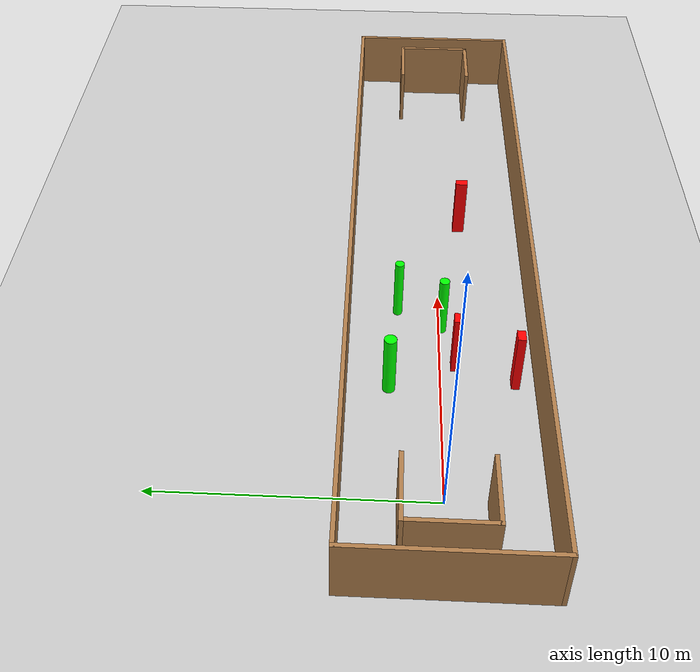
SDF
<sdf version="1.7">
 <world name="default">
  <light name="sun" type="directional">
   <pose>0 0 10 0 -0 0</pose>
   <diffuse>0.8 0.8 0.8 1</diffuse>
   <specular>0.2 0.2 0.2 1</specular>
   <attenuation>
    <range>1000</range>
    <constant>0.9</constant>
    <linear>0.01</linear>
    <quadratic>0.001</quadratic>
   </attenuation>
   <direction>-0.5 0.1 -0.9</direction>
   <spot><inner_angle>0</inner_angle><outer_angle>0</outer_angle><falloff>0</falloff></spot>
  </light>
  <model name="ground_plane">
   <static>1</static>
   <link name="link">
    <collision name="collision">
     <geometry><plane><normal>0 0 1</normal><size>100 100</size></plane></geometry>
     <surface>
      <contact><collide_bitmask>65535</collide_bitmask></contact>
      <friction><ode><mu>100</mu><mu2>50</mu2></ode></friction>
     </surface>
    </collision>
    <visual name="visual">
     <cast_shadows>0</cast_shadows>
     <geometry><plane><normal>0 0 1</normal><size>100 100</size></plane></geometry>
     <material>
      <script><uri>file://media/materials/scripts/gazebo.material</uri><name>Gazebo/Grey</name></script>
     </material>
    </visual>
   </link>
  </model>
  <gravity>0 0 -9.8</gravity>
  <magnetic_field>6e-06 2.3e-05 -4.2e-05</magnetic_field>
  <atmosphere type="adiabatic"/>
  <physics type="ode">
   <max_step_size>0.001</max_step_size>
   <real_time_factor>1</real_time_factor>
   <real_time_update_rate>1000</real_time_update_rate>
  </physics>
  <scene><ambient>0.4 0.4 0.4 1</ambient><background>0.7 0.7 0.7 1</background><shadows>1</shadows></scene>
  <spherical_coordinates>
   <surface_model>EARTH_WGS84</surface_model>
   <latitude_deg>0</latitude_deg>
   <longitude_deg>0</longitude_deg>
   <elevation>0</elevation>
   <heading_deg>0</heading_deg>
  </spherical_coordinates>
  <model name="my_base_walls">
   <link name="Wall_0">
    <collision name="Wall_0_Collision">
     <geometry><box><size>7.15 0.15 2.5</size></box></geometry>
     <pose>0 0 1.25 0 -0 0</pose>
    </collision>
    <visual name="Wall_0_Visual">
     <pose>0 0 1.25 0 -0 0</pose>
     <geometry><box><size>7.15 0.15 2.5</size></box></geometry>
     <material>
      <script><uri>file://media/materials/scripts/gazebo.material</uri><name>Gazebo/Wood</name></script>
      <ambient>1 1 1 1</ambient>
     </material>
     <meta><layer>0</layer></meta>
    </visual>
    <pose>-15 0 0 0 -0 1.5708</pose>
   </link>
   <link name="Wall_10">
    <collision name="Wall_10_Collision">
     <geometry><box><size>2.65 0.15 2.5</size></box></geometry>
     <pose>0 0 1.25 0 -0 0</pose>
    </collision>
    <visual name="Wall_10_Visual">
     <pose>0 0 1.25 0 -0 0</pose>
     <geometry><box><size>2.65 0.15 2.5</size></box></geometry>
     <material>
      <script><uri>file://media/materials/scripts/gazebo.material</uri><name>Gazebo/Wood</name></script>
      <ambient>1 1 1 1</ambient>
     </material>
     <meta><layer>0</layer></meta>
    </visual>
    <pose>-12.75 -1.5 0 0 -0 0</pose>
   </link>
   <link name="Wall_12">
    <collision name="Wall_12_Collision">
     <geometry><box><size>2.65 0.15 2.5</size></box></geometry>
     <pose>0 0 1.25 0 -0 0</pose>
    </collision>
    <visual name="Wall_12_Visual">
     <pose>0 0 1.25 0 -0 0</pose>
     <geometry><box><size>2.65 0.15 2.5</size></box></geometry>
     <material>
      <script><uri>file://media/materials/scripts/gazebo.material</uri><name>Gazebo/Wood</name></script>
      <ambient>1 1 1 1</ambient>
     </material>
     <meta><layer>0</layer></meta>
    </visual>
    <pose>-12.75 1.5 0 0 -0 0</pose>
   </link>
   <link name="Wall_14">
    <collision name="Wall_14_Collision">
     <geometry><box><size>3.15 0.15 2.5</size></box></geometry>
     <pose>0 0 1.25 0 -0 0</pose>
    </collision>
    <visual name="Wall_14_Visual">
     <pose>0 0 1.25 0 -0 0</pose>
     <geometry><box><size>3.15 0.15 2.5</size></box></geometry>
     <material>
      <script><uri>file://media/materials/scripts/gazebo.material</uri><name>Gazebo/Wood</name></script>
      <ambient>1 1 1 1</ambient>
     </material>
     <meta><layer>0</layer></meta>
    </visual>
    <pose>14 0 0 0 -0 -1.5708</pose>
   </link>
   <link name="Wall_15">
    <collision name="Wall_15_Collision">
     <geometry><box><size>2.65 0.15 2.5</size></box></geometry>
     <pose>0 0 1.25 0 -0 0</pose>
    </collision>
    <visual name="Wall_15_Visual">
     <pose>0 0 1.25 0 -0 0</pose>
     <geometry><box><size>2.65 0.15 2.5</size></box></geometry>
     <material>
      <script><uri>file://media/materials/scripts/gazebo.material</uri><name>Gazebo/Wood</name></script>
      <ambient>1 1 1 1</ambient>
     </material>
     <meta><layer>0</layer></meta>
    </visual>
    <pose>12.75 -1.5 0 0 -0 3.14159</pose>
   </link>
   <link name="Wall_17">
    <collision name="Wall_17_Collision">
     <geometry><box><size>2.65 0.15 2.5</size></box></geometry>
     <pose>0 0 1.25 0 -0 0</pose>
    </collision>
    <visual name="Wall_17_Visual">
     <pose>0 0 1.25 0 -0 0</pose>
     <geometry><box><size>2.65 0.15 2.5</size></box></geometry>
     <material>
      <script><uri>file://media/materials/scripts/gazebo.material</uri><name>Gazebo/Wood</name></script>
      <ambient>1 1 1 1</ambient>
     </material>
     <meta><layer>0</layer></meta>
    </visual>
    <pose>12.75 1.5 0 0 -0 3.14159</pose>
   </link>
   <link name="Wall_2">
    <collision name="Wall_2_Collision">
     <geometry><box><size>30.15 0.15 2.5</size></box></geometry>
     <pose>0 0 1.25 0 -0 0</pose>
    </collision>
    <visual name="Wall_2_Visual">
     <pose>0 0 1.25 0 -0 0</pose>
     <geometry><box><size>30.15 0.15 2.5</size></box></geometry>
     <material>
      <script><uri>file://media/materials/scripts/gazebo.material</uri><name>Gazebo/Wood</name></script>
      <ambient>1 1 1 1</ambient>
     </material>
     <meta><layer>0</layer></meta>
    </visual>
    <pose>-0 -3.5 0 0 -0 0</pose>
   </link>
   <link name="Wall_4">
    <collision name="Wall_4_Collision">
     <geometry><box><size>30.15 0.15 2.5</size></box></geometry>
     <pose>0 0 1.25 0 -0 0</pose>
    </collision>
    <visual name="Wall_4_Visual">
     <pose>0 0 1.25 0 -0 0</pose>
     <geometry><box><size>30.15 0.15 2.5</size></box></geometry>
     <material>
      <script><uri>file://media/materials/scripts/gazebo.material</uri><name>Gazebo/Wood</name></script>
      <ambient>1 1 1 1</ambient>
     </material>
     <meta><layer>0</layer></meta>
    </visual>
    <pose>-0 3.5 0 0 -0 0</pose>
   </link>
   <link name="Wall_6">
    <collision name="Wall_6_Collision">
     <geometry><box><size>7.15 0.15 2.5</size></box></geometry>
     <pose>0 0 1.25 0 -0 0</pose>
    </collision>
    <visual name="Wall_6_Visual">
     <pose>0 0 1.25 0 -0 0</pose>
     <geometry><box><size>7.15 0.15 2.5</size></box></geometry>
     <material>
      <script><uri>file://media/materials/scripts/gazebo.material</uri><name>Gazebo/Wood</name></script>
      <ambient>1 1 1 1</ambient>
     </material>
     <meta><layer>0</layer></meta>
    </visual>
    <pose>15 0 0 0 -0 -1.5708</pose>
   </link>
   <link name="Wall_9">
    <collision name="Wall_9_Collision">
     <geometry><box><size>3.15 0.15 2.5</size></box></geometry>
     <pose>0 0 1.25 0 -0 0</pose>
    </collision>
    <visual name="Wall_9_Visual">
     <pose>0 0 1.25 0 -0 0</pose>
     <geometry><box><size>3.15 0.15 2.5</size></box></geometry>
     <material>
      <script><uri>file://media/materials/scripts/gazebo.material</uri><name>Gazebo/Wood</name></script>
      <ambient>1 1 1 1</ambient>
     </material>
     <meta><layer>0</layer></meta>
    </visual>
    <pose>-14 0 0 0 -0 -1.5708</pose>
   </link>
   <static>1</static>
   <pose>11.5 0 0 0 -0 0</pose>
  </model>
  <model name="cylinder1">
   <static>1</static>
   <link name="link">
    <inertial>
     <mass>1</mass>
     <inertia><ixx>0.5</ixx><ixy>0</ixy><ixz>0</ixz><iyy>0.5</iyy><iyz>0</iyz><izz>1</izz></inertia>
    </inertial>
    <collision name="collision">
     <geometry><cylinder><radius>0.23187480812393502</radius><length>2.5</length></cylinder></geometry>
    </collision>
    <visual name="visual">
     <geometry><cylinder><radius>0.23187480812393502</radius><length>2.5</length></cylinder></geometry>
     <material>
      <ambient>0 1 0 1</ambient>
      <diffuse>0 1 0 1</diffuse>
      <specular>0.1 0.1 0.1 1</specular>
      <emissive>0 0 0 0</emissive>
     </material>
    </visual>
   </link>
   <pose>5.02033848131139 1.8867005184551289 1.25 0 0 0</pose>
  </model>
  <model name="cylinder2">
   <static>1</static>
   <link name="link">
    <inertial>
     <mass>1</mass>
     <inertia><ixx>0.5</ixx><ixy>0</ixy><ixz>0</ixz><iyy>0.5</iyy><iyz>0</iyz><izz>1</izz></inertia>
    </inertial>
    <collision name="collision">
     <geometry><cylinder><radius>0.17221856043110523</radius><length>2.5</length></cylinder></geometry>
    </collision>
    <visual name="visual">
     <geometry><cylinder><radius>0.17221856043110523</radius><length>2.5</length></cylinder></geometry>
     <material>
      <ambient>0 1 0 1</ambient>
      <diffuse>0 1 0 1</diffuse>
      <specular>0.1 0.1 0.1 1</specular>
      <emissive>0 0 0 0</emissive>
     </material>
    </visual>
   </link>
   <pose>9.09345961833249 1.586168748054953 1.25 0 0 0</pose>
  </model>
  <model name="cylinder3">
   <static>1</static>
   <link name="link">
    <inertial>
     <mass>1</mass>
     <inertia><ixx>0.5</ixx><ixy>0</ixy><ixz>0</ixz><iyy>0.5</iyy><iyz>0</iyz><izz>1</izz></inertia>
    </inertial>
    <collision name="collision">
     <geometry><cylinder><radius>0.1883757260895733</radius><length>2.5</length></cylinder></geometry>
    </collision>
    <visual name="visual">
     <geometry><cylinder><radius>0.1883757260895733</radius><length>2.5</length></cylinder></geometry>
     <material>
      <ambient>0 1 0 1</ambient>
      <diffuse>0 1 0 1</diffuse>
      <specular>0.1 0.1 0.1 1</specular>
      <emissive>0 0 0 0</emissive>
     </material>
    </visual>
   </link>
   <pose>8.180719376777757 -0.08614052934486427 1.25 0 0 0</pose>
  </model>
  <model name="box1">
   <static>1</static>
   <link name="link">
    <inertial>
     <mass>1</mass>
     <inertia><ixx>0.083</ixx><ixy>0</ixy><ixz>0</ixz><iyy>0.083</iyy><iyz>0</iyz><izz>0.083</izz></inertia>
    </inertial>
    <collision name="collision">
     <geometry><box><size>0.47317244558535465 0.2020747499823593 2.5</size></box></geometry>
    </collision>
    <visual name="visual">
     <geometry><box><size>0.47317244558535465 0.2020747499823593 2.5</size></box></geometry>
     <material>
      <ambient>1 0 0 1</ambient>
      <diffuse>1 0 0 1</diffuse>
      <specular>0.1 0.1 0.1 1</specular>
      <emissive>0 0 0 0</emissive>
     </material>
    </visual>
    <sensor name="my_contact" type="contact">
     <contact><collision>box_collision</collision><topic>__default_topic__</topic></contact>
    </sensor>
   </link>
   <pose>6.2275903682022715 -0.4845918766806685 1.25 0 0 0</pose>
  </model>
  <model name="box2">
   <static>1</static>
   <link name="link">
    <inertial>
     <mass>1</mass>
     <inertia><ixx>0.083</ixx><ixy>0</ixy><ixz>0</ixz><iyy>0.083</iyy><iyz>0</iyz><izz>0.083</izz></inertia>
    </inertial>
    <collision name="collision">
     <geometry><box><size>0.304495958609526 0.4645018924876486 2.5</size></box></geometry>
    </collision>
    <visual name="visual">
     <geometry><box><size>0.304495958609526 0.4645018924876486 2.5</size></box></geometry>
     <material>
      <ambient>1 0 0 1</ambient>
      <diffuse>1 0 0 1</diffuse>
      <specular>0.1 0.1 0.1 1</specular>
      <emissive>0 0 0 0</emissive>
     </material>
    </visual>
    <sensor name="my_contact" type="contact">
     <contact><collision>box_collision</collision><topic>__default_topic__</topic></contact>
    </sensor>
   </link>
   <pose>14.395327591345884 -0.9431616061680947 1.25 0 0 0</pose>
  </model>
  <model name="box3">
   <static>1</static>
   <link name="link">
    <inertial>
     <mass>1</mass>
     <inertia><ixx>0.083</ixx><ixy>0</ixy><ixz>0</ixz><iyy>0.083</iyy><iyz>0</iyz><izz>0.083</izz></inertia>
    </inertial>
    <collision name="collision">
     <geometry><box><size>0.4829538672665385 0.30208334745974363 2.5</size></box></geometry>
    </collision>
    <visual name="visual">
     <geometry><box><size>0.4829538672665385 0.30208334745974363 2.5</size></box></geometry>
     <material>
      <ambient>1 0 0 1</ambient>
      <diffuse>1 0 0 1</diffuse>
      <specular>0.1 0.1 0.1 1</specular>
      <emissive>0 0 0 0</emissive>
     </material>
    </visual>
    <sensor name="my_contact" type="contact">
     <contact><collision>box_collision</collision><topic>__default_topic__</topic></contact>
    </sensor>
   </link>
   <pose>5.44494714447486 -2.705696767813463 1.25 0 0 0</pose>
  </model>
 </world>
</sdf>
